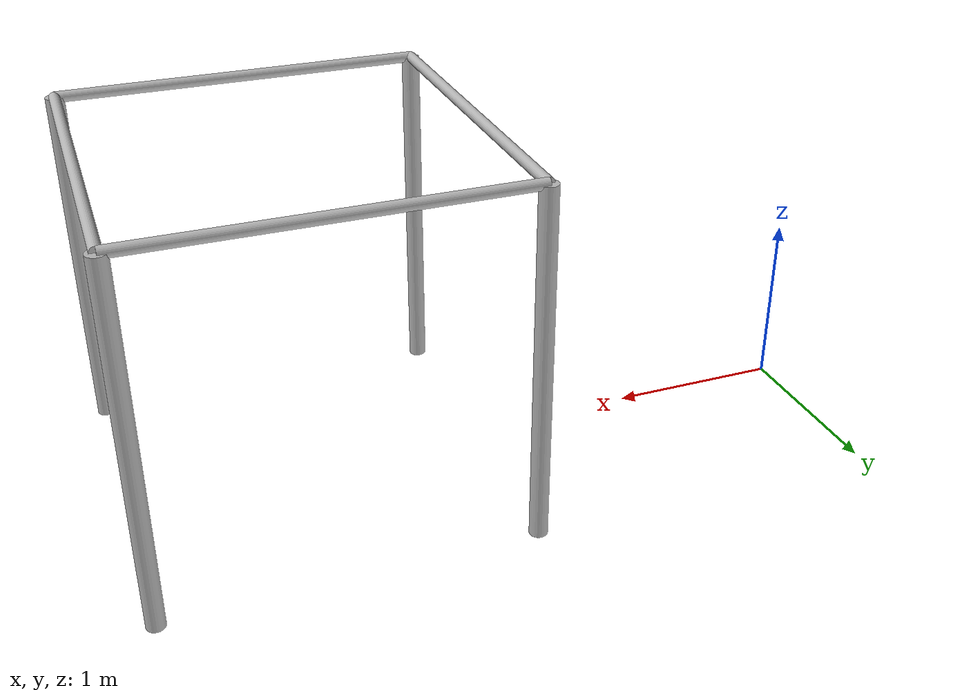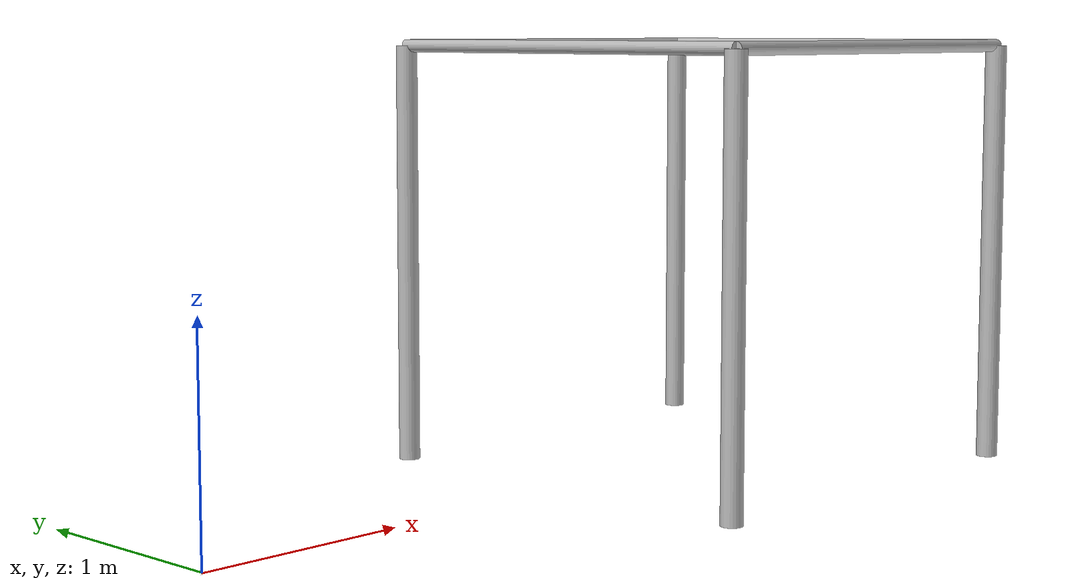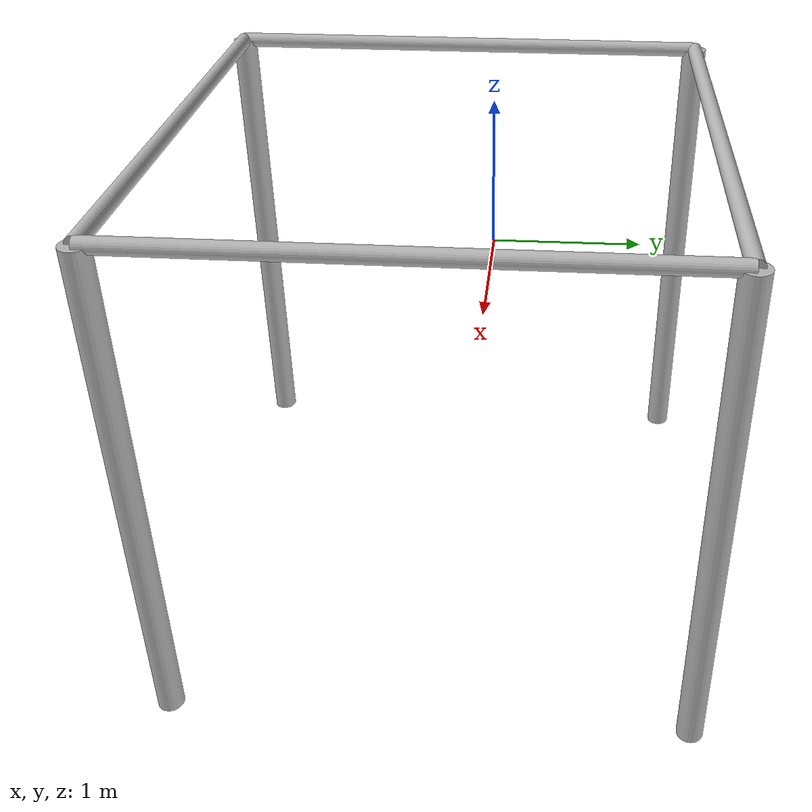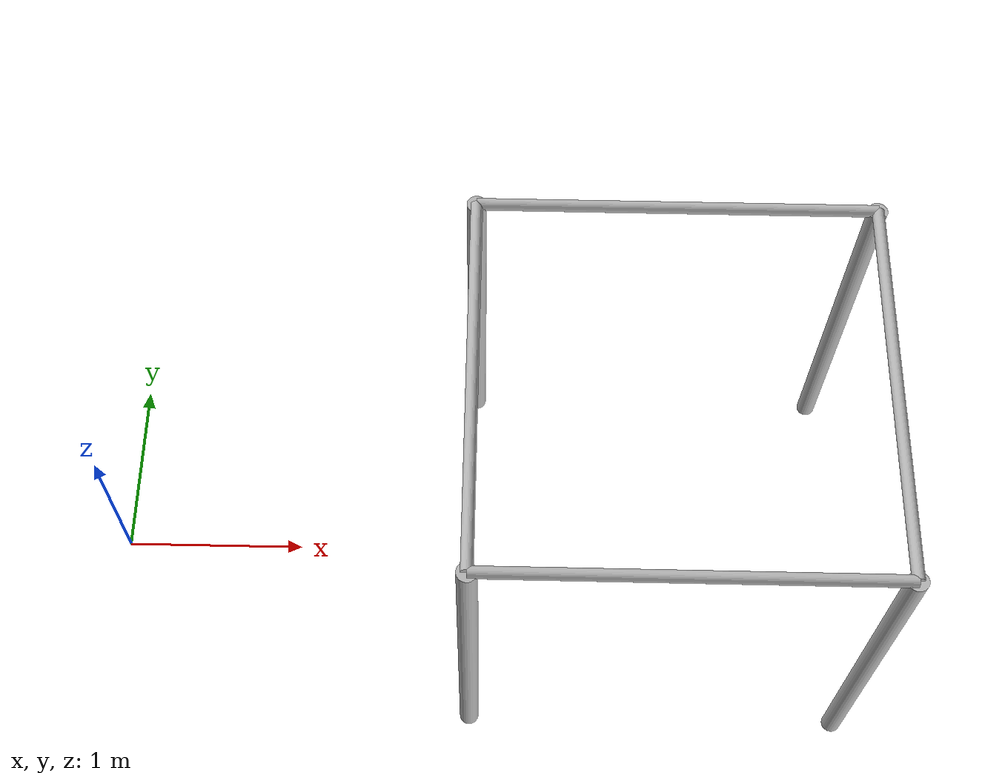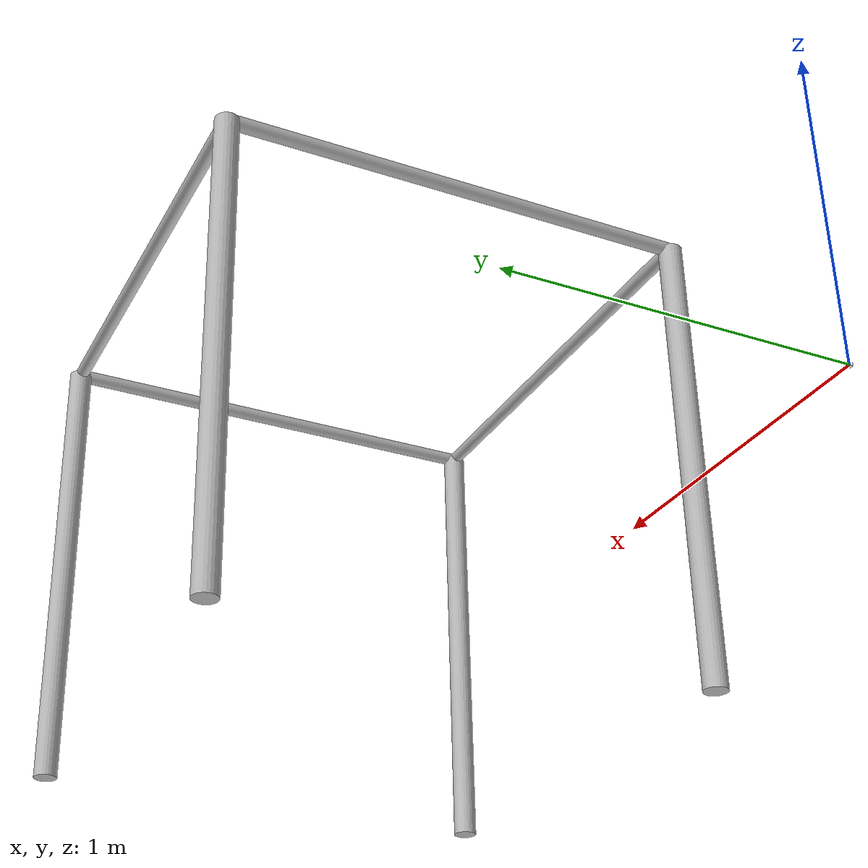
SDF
<?xml version="1.0" ?>
<sdf version="1.6">
  <model name="jacket_frame">
    <static>true</static>
    <link name="base_link">
      <pose>0 0 0 0 0 0</pose>
      <visual name="base_link">
        <geometry>
          <box><size>0.01 0.01 0.01</size></box>
        </geometry>
      </visual>
    </link>
    <!-- Four vertical legs -->
    <link name="leg1">
      <pose>2 -1 1 0 0 0</pose>
      <visual name="visual_leg1">
        <geometry>
          <cylinder>
            <radius>0.05</radius>
            <length>2</length>
          </cylinder>
        </geometry>
      </visual>
      <collision name="collision_leg1">
        <geometry>
          <cylinder>
            <radius>0.05</radius>
            <length>2</length>
          </cylinder>
        </geometry>
      </collision>
      <inertial>
        <mass>1.0</mass>
        <inertia>
          <ixx>1.0</ixx><iyy>1.0</iyy><izz>1.0</izz>
          <ixy>0.0</ixy><ixz>0.0</ixz><iyz>0.0</iyz>
        </inertia>
      </inertial>
    </link>

    <link name="leg2">
      <pose>4 -1 1 0 0 0</pose>
      <visual name="visual_leg2">
        <geometry>
          <cylinder>
            <radius>0.05</radius>
            <length>2</length>
          </cylinder>
        </geometry>
      </visual>
      <collision name="collision_leg2">
        <geometry>
          <cylinder>
            <radius>0.05</radius>
            <length>2</length>
          </cylinder>
        </geometry>
      </collision>
      <inertial>
        <mass>1.0</mass>
        <inertia>
          <ixx>1.0</ixx><iyy>1.0</iyy><izz>1.0</izz>
          <ixy>0.0</ixy><ixz>0.0</ixz><iyz>0.0</iyz>
        </inertia>
      </inertial>
    </link>

    <link name="leg3">
      <pose>2 1 1 0 0 0</pose>
      <visual name="visual_leg3">
        <geometry>
          <cylinder>
            <radius>0.05</radius>
            <length>2</length>
          </cylinder>
        </geometry>
      </visual>
      <collision name="collision_leg3">
        <geometry>
          <cylinder>
            <radius>0.05</radius>
            <length>2</length>
          </cylinder>
        </geometry>
      </collision>
      <inertial>
        <mass>1.0</mass>
        <inertia>
          <ixx>1.0</ixx><iyy>1.0</iyy><izz>1.0</izz>
          <ixy>0.0</ixy><ixz>0.0</ixz><iyz>0.0</iyz>
        </inertia>
      </inertial>
    </link>

    <link name="leg4">
      <pose>4 1 1 0 0 0</pose>
      <visual name="visual_leg4">
        <geometry>
          <cylinder>
            <radius>0.05</radius>
            <length>2</length>
          </cylinder>
        </geometry>
      </visual>
      <collision name="collision_leg4">
        <geometry>
          <cylinder>
            <radius>0.05</radius>
            <length>2</length>
          </cylinder>
        </geometry>
      </collision>
      <inertial>
        <mass>1.0</mass>
        <inertia>
          <ixx>1.0</ixx><iyy>1.0</iyy><izz>1.0</izz>
          <ixy>0.0</ixy><ixz>0.0</ixz><iyz>0.0</iyz>
        </inertia>
      </inertial>
    </link>

    <!-- Top horizontal connectors -->
    <link name="top_12">
      <pose>3 1 2 0 1.5708 0</pose>
      <visual name="visual_top12">
        <geometry>
          <cylinder>
            <radius>0.03</radius>
            <length>2</length>
          </cylinder>
        </geometry>
      </visual>
      <collision name="collision_top12">
        <geometry>
          <cylinder>
            <radius>0.03</radius>
            <length>2</length>
          </cylinder>
        </geometry>
      </collision>
      <inertial>
        <mass>0.5</mass>
        <inertia>
          <ixx>0.5</ixx><iyy>0.5</iyy><izz>0.5</izz>
          <ixy>0.0</ixy><ixz>0.0</ixz><iyz>0.0</iyz>
        </inertia>
      </inertial>
    </link>

    <link name="top_24">
      <pose>4 0 2 1.5708 0 0</pose>
      <visual name="visual_top24">
        <geometry>
          <cylinder>Set the drone starting
            <radius>0.03</radius>
            <length>2</length>
          </cylinder>
        </geometry>
      </visual>
      <collision name="collision_top24">
        <geometry>
          <cylinder>
            <radius>0.03</radius>
            <length>2</length>
          </cylinder>
        </geometry>
      </collision>
      <inertial>
        <mass>0.5</mass>
        <inertia>
          <ixx>0.5</ixx><iyy>0.5</iyy><izz>0.5</izz>
          <ixy>0.0</ixy><ixz>0.0</ixz><iyz>0.0</iyz>
        </inertia>
      </inertial>
    </link>
        <link name="top_43">
      <pose>3 -1 2 0 1.5708 0</pose>
      <visual name="visual_top43">
        <geometry>
          <cylinder>
            <radius>0.03</radius>
            <length>2</length>
          </cylinder>
        </geometry>
      </visual>
      <collision name="collision_top43">
        <geometry>
          <cylinder>
            <radius>0.03</radius>
            <length>2</length>
          </cylinder>
        </geometry>
      </collision>
      <inertial>
        <mass>0.5</mass>
        <inertia>
          <ixx>0.5</ixx><iyy>0.5</iyy><izz>0.5</izz>
          <ixy>0.0</ixy><ixz>0.0</ixz><iyz>0.0</iyz>
        </inertia>
      </inertial>
    </link>

    <link name="top_31">
      <pose>2 0 2 1.5708 0 0</pose>
      <visual name="visual_top31">
        <geometry>
          <cylinder>Set the drone starting
            <radius>0.03</radius>
            <length>2</length>
          </cylinder>
        </geometry>
      </visual>
      <collision name="collision_top31">
        <geometry>
          <cylinder>
            <radius>0.03</radius>
            <length>2</length>
          </cylinder>
        </geometry>
      </collision>
      <inertial>
        <mass>0.5</mass>
        <inertia>
          <ixx>0.5</ixx><iyy>0.5</iyy><izz>0.5</izz>
          <ixy>0.0</ixy><ixz>0.0</ixz><iyz>0.0</iyz>
        </inertia>
      </inertial>
    </link>
    <joint name="joint_leg1" type="fixed">
      <parent>base_link</parent>
      <child>leg1</child>
    </joint>
    <joint name="joint_leg2" type="fixed">
      <parent>base_link</parent>
      <child>leg2</child>
    </joint>
    <joint name="joint_leg3" type="fixed">
      <parent>base_link</parent>
      <child>leg3</child>
    </joint>
    <joint name="joint_leg4" type="fixed">
      <parent>base_link</parent>
      <child>leg4</child>
    </joint>
    <joint name="joint_top_12" type="fixed">
      <parent>base_link</parent>
      <child>top_12</child>
    </joint>
    <joint name="joint_top_24" type="fixed">
      <parent>base_link</parent>
      <child>top_24</child>
    </joint>
    <joint name="joint_top_43" type="fixed">
      <parent>base_link</parent>
      <child>top_43</child>
    </joint>
    <joint name="joint_top_31" type="fixed">
      <parent>base_link</parent>
      <child>top_31</child>
    </joint>
  </model>
</sdf>
